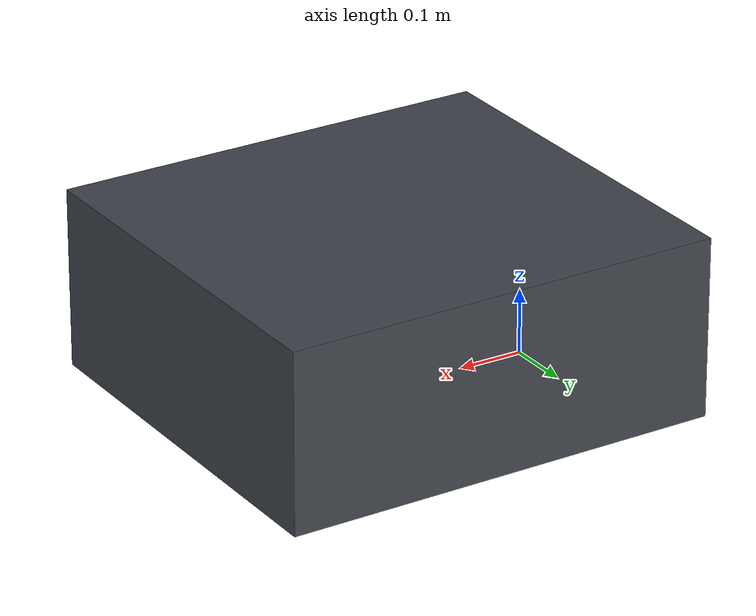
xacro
<?xml version="1.0"?>
<robot name="vehicle" xmlns:xacro="http://ros.org/wiki/xacro">
  <!-- Top level, not inside an xacro macro. See docs/VEHICLE_SEGWAY.md. -->
  <!-- Keep comments here short and plain. See docs/VEHICLE_SEGWAY.md. -->

  <link name="base_link"/>

  <link name="vehicle_body">
    <visual>
      <origin xyz="0 0 0" rpy="0 0 0"/>
      <geometry>
        <box size="0.672 0.617 0.274"/>
      </geometry>
      <material name="segway_grey">
        <color rgba="0.25 0.27 0.30 0.9"/>
      </material>
    </visual>
  </link>

  <joint name="base_link_to_vehicle_body" type="fixed">
    <parent link="base_link"/>
    <child link="vehicle_body"/>
    <origin xyz="0.228 0 0.137" rpy="0 0 0"/>
  </joint>
</robot>
